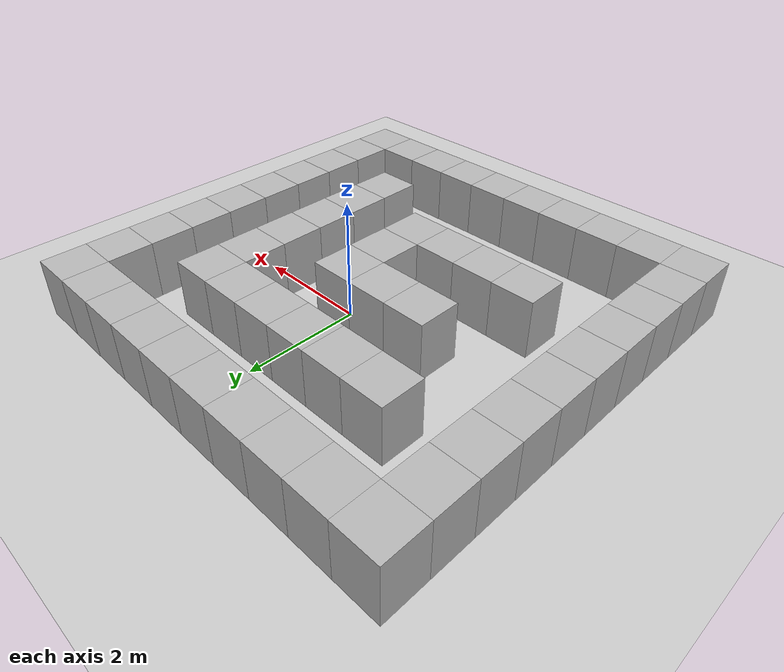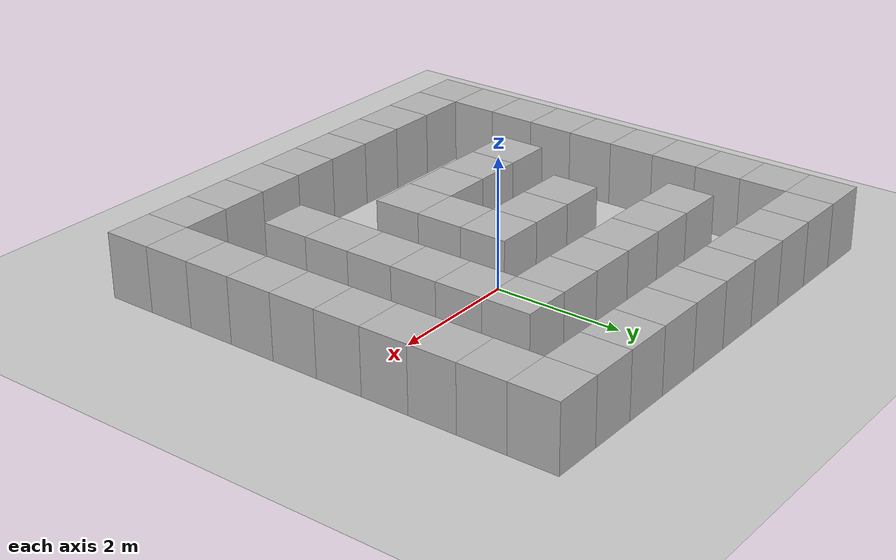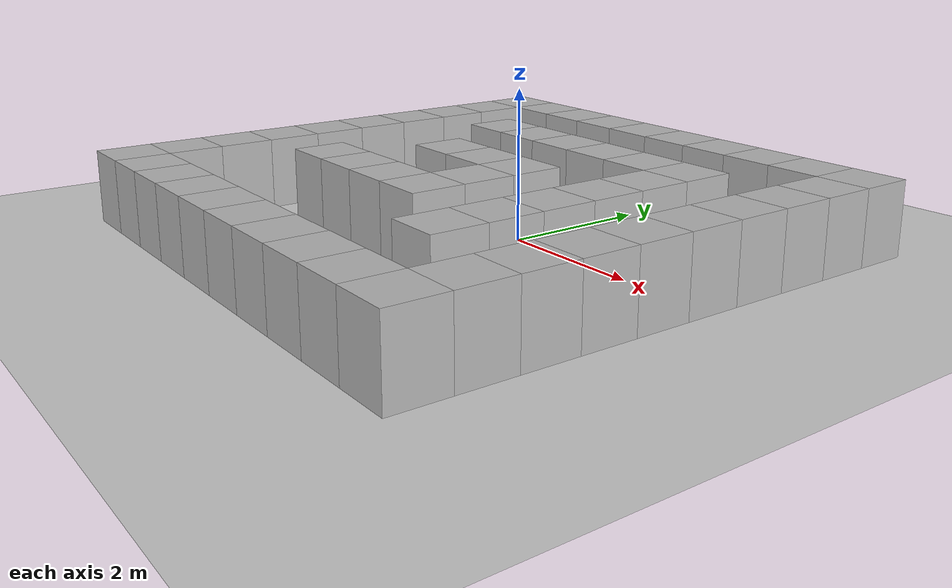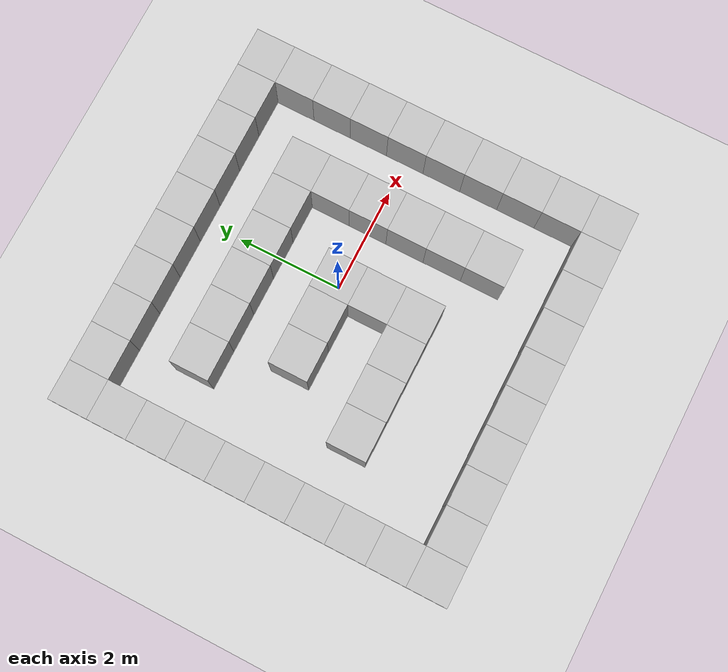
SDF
<?xml version="1.0" ?>
    <sdf version="1.5">
      <world name="default">
        <include>
          <uri>model://ground_plane</uri>
        </include>
        <include>
          <uri>model://sun</uri>
        </include>

                <model name="outer_wall_0_0">
                  <static>true</static>
                  <link name="link">
                    <collision name="collision">
                      <geometry>
                        <box>
                          <size>0.75 0.75 1</size>
                        </box>
                      </geometry>
                    </collision>
                    <visual name="visual">
                      <geometry>
                        <box>
                          <size>0.75 0.75 1</size>
                        </box>
                      </geometry>
                    </visual>
                  </link>
                  <pose>-3.75 -3.75 0.5 0 0 0</pose>
                </model>

                <model name="outer_wall_1_0">
                  <static>true</static>
                  <link name="link">
                    <collision name="collision">
                      <geometry>
                        <box>
                          <size>0.75 0.75 1</size>
                        </box>
                      </geometry>
                    </collision>
                    <visual name="visual">
                      <geometry>
                        <box>
                          <size>0.75 0.75 1</size>
                        </box>
                      </geometry>
                    </visual>
                  </link>
                  <pose>-3.0 -3.75 0.5 0 0 0</pose>
                </model>

                <model name="outer_wall_2_0">
                  <static>true</static>
                  <link name="link">
                    <collision name="collision">
                      <geometry>
                        <box>
                          <size>0.75 0.75 1</size>
                        </box>
                      </geometry>
                    </collision>
                    <visual name="visual">
                      <geometry>
                        <box>
                          <size>0.75 0.75 1</size>
                        </box>
                      </geometry>
                    </visual>
                  </link>
                  <pose>-2.25 -3.75 0.5 0 0 0</pose>
                </model>

                <model name="outer_wall_3_0">
                  <static>true</static>
                  <link name="link">
                    <collision name="collision">
                      <geometry>
                        <box>
                          <size>0.75 0.75 1</size>
                        </box>
                      </geometry>
                    </collision>
                    <visual name="visual">
                      <geometry>
                        <box>
                          <size>0.75 0.75 1</size>
                        </box>
                      </geometry>
                    </visual>
                  </link>
                  <pose>-1.5 -3.75 0.5 0 0 0</pose>
                </model>

                <model name="outer_wall_4_0">
                  <static>true</static>
                  <link name="link">
                    <collision name="collision">
                      <geometry>
                        <box>
                          <size>0.75 0.75 1</size>
                        </box>
                      </geometry>
                    </collision>
                    <visual name="visual">
                      <geometry>
                        <box>
                          <size>0.75 0.75 1</size>
                        </box>
                      </geometry>
                    </visual>
                  </link>
                  <pose>-0.75 -3.75 0.5 0 0 0</pose>
                </model>

                <model name="outer_wall_5_0">
                  <static>true</static>
                  <link name="link">
                    <collision name="collision">
                      <geometry>
                        <box>
                          <size>0.75 0.75 1</size>
                        </box>
                      </geometry>
                    </collision>
                    <visual name="visual">
                      <geometry>
                        <box>
                          <size>0.75 0.75 1</size>
                        </box>
                      </geometry>
                    </visual>
                  </link>
                  <pose>0.0 -3.75 0.5 0 0 0</pose>
                </model>

                <model name="outer_wall_6_0">
                  <static>true</static>
                  <link name="link">
                    <collision name="collision">
                      <geometry>
                        <box>
                          <size>0.75 0.75 1</size>
                        </box>
                      </geometry>
                    </collision>
                    <visual name="visual">
                      <geometry>
                        <box>
                          <size>0.75 0.75 1</size>
                        </box>
                      </geometry>
                    </visual>
                  </link>
                  <pose>0.75 -3.75 0.5 0 0 0</pose>
                </model>

                <model name="outer_wall_7_0">
                  <static>true</static>
                  <link name="link">
                    <collision name="collision">
                      <geometry>
                        <box>
                          <size>0.75 0.75 1</size>
                        </box>
                      </geometry>
                    </collision>
                    <visual name="visual">
                      <geometry>
                        <box>
                          <size>0.75 0.75 1</size>
                        </box>
                      </geometry>
                    </visual>
                  </link>
                  <pose>1.5 -3.75 0.5 0 0 0</pose>
                </model>

                <model name="outer_wall_8_0">
                  <static>true</static>
                  <link name="link">
                    <collision name="collision">
                      <geometry>
                        <box>
                          <size>0.75 0.75 1</size>
                        </box>
                      </geometry>
                    </collision>
                    <visual name="visual">
                      <geometry>
                        <box>
                          <size>0.75 0.75 1</size>
                        </box>
                      </geometry>
                    </visual>
                  </link>
                  <pose>2.25 -3.75 0.5 0 0 0</pose>
                </model>

                <model name="outer_wall_9_0">
                  <static>true</static>
                  <link name="link">
                    <collision name="collision">
                      <geometry>
                        <box>
                          <size>0.75 0.75 1</size>
                        </box>
                      </geometry>
                    </collision>
                    <visual name="visual">
                      <geometry>
                        <box>
                          <size>0.75 0.75 1</size>
                        </box>
                      </geometry>
                    </visual>
                  </link>
                  <pose>3.0 -3.75 0.5 0 0 0</pose>
                </model>

                <model name="outer_wall_0_1">
                  <static>true</static>
                  <link name="link">
                    <collision name="collision">
                      <geometry>
                        <box>
                          <size>0.75 0.75 1</size>
                        </box>
                      </geometry>
                    </collision>
                    <visual name="visual">
                      <geometry>
                        <box>
                          <size>0.75 0.75 1</size>
                        </box>
                      </geometry>
                    </visual>
                  </link>
                  <pose>-3.75 -3.0 0.5 0 0 0</pose>
                </model>

                <model name="outer_wall_9_1">
                  <static>true</static>
                  <link name="link">
                    <collision name="collision">
                      <geometry>
                        <box>
                          <size>0.75 0.75 1</size>
                        </box>
                      </geometry>
                    </collision>
                    <visual name="visual">
                      <geometry>
                        <box>
                          <size>0.75 0.75 1</size>
                        </box>
                      </geometry>
                    </visual>
                  </link>
                  <pose>3.0 -3.0 0.5 0 0 0</pose>
                </model>

                <model name="outer_wall_0_2">
                  <static>true</static>
                  <link name="link">
                    <collision name="collision">
                      <geometry>
                        <box>
                          <size>0.75 0.75 1</size>
                        </box>
                      </geometry>
                    </collision>
                    <visual name="visual">
                      <geometry>
                        <box>
                          <size>0.75 0.75 1</size>
                        </box>
                      </geometry>
                    </visual>
                  </link>
                  <pose>-3.75 -2.25 0.5 0 0 0</pose>
                </model>

                <model name="outer_wall_9_2">
                  <static>true</static>
                  <link name="link">
                    <collision name="collision">
                      <geometry>
                        <box>
                          <size>0.75 0.75 1</size>
                        </box>
                      </geometry>
                    </collision>
                    <visual name="visual">
                      <geometry>
                        <box>
                          <size>0.75 0.75 1</size>
                        </box>
                      </geometry>
                    </visual>
                  </link>
                  <pose>3.0 -2.25 0.5 0 0 0</pose>
                </model>

                <model name="outer_wall_0_3">
                  <static>true</static>
                  <link name="link">
                    <collision name="collision">
                      <geometry>
                        <box>
                          <size>0.75 0.75 1</size>
                        </box>
                      </geometry>
                    </collision>
                    <visual name="visual">
                      <geometry>
                        <box>
                          <size>0.75 0.75 1</size>
                        </box>
                      </geometry>
                    </visual>
                  </link>
                  <pose>-3.75 -1.5 0.5 0 0 0</pose>
                </model>

                <model name="outer_wall_9_3">
                  <static>true</static>
                  <link name="link">
                    <collision name="collision">
                      <geometry>
                        <box>
                          <size>0.75 0.75 1</size>
                        </box>
                      </geometry>
                    </collision>
                    <visual name="visual">
                      <geometry>
                        <box>
                          <size>0.75 0.75 1</size>
                        </box>
                      </geometry>
                    </visual>
                  </link>
                  <pose>3.0 -1.5 0.5 0 0 0</pose>
                </model>

                <model name="outer_wall_0_4">
                  <static>true</static>
                  <link name="link">
                    <collision name="collision">
                      <geometry>
                        <box>
                          <size>0.75 0.75 1</size>
                        </box>
                      </geometry>
                    </collision>
                    <visual name="visual">
                      <geometry>
                        <box>
                          <size>0.75 0.75 1</size>
                        </box>
                      </geometry>
                    </visual>
                  </link>
                  <pose>-3.75 -0.75 0.5 0 0 0</pose>
                </model>

                <model name="outer_wall_9_4">
                  <static>true</static>
                  <link name="link">
                    <collision name="collision">
                      <geometry>
                        <box>
                          <size>0.75 0.75 1</size>
                        </box>
                      </geometry>
                    </collision>
                    <visual name="visual">
                      <geometry>
                        <box>
                          <size>0.75 0.75 1</size>
                        </box>
                      </geometry>
                    </visual>
                  </link>
                  <pose>3.0 -0.75 0.5 0 0 0</pose>
                </model>

                <model name="outer_wall_0_5">
                  <static>true</static>
                  <link name="link">
                    <collision name="collision">
                      <geometry>
                        <box>
                          <size>0.75 0.75 1</size>
                        </box>
                      </geometry>
                    </collision>
                    <visual name="visual">
                      <geometry>
                        <box>
                          <size>0.75 0.75 1</size>
                        </box>
                      </geometry>
                    </visual>
                  </link>
                  <pose>-3.75 0.0 0.5 0 0 0</pose>
                </model>

                <model name="outer_wall_9_5">
                  <static>true</static>
                  <link name="link">
                    <collision name="collision">
                      <geometry>
                        <box>
                          <size>0.75 0.75 1</size>
                        </box>
                      </geometry>
                    </collision>
                    <visual name="visual">
                      <geometry>
                        <box>
                          <size>0.75 0.75 1</size>
                        </box>
                      </geometry>
                    </visual>
                  </link>
                  <pose>3.0 0.0 0.5 0 0 0</pose>
                </model>

                <model name="outer_wall_0_6">
                  <static>true</static>
                  <link name="link">
                    <collision name="collision">
                      <geometry>
                        <box>
                          <size>0.75 0.75 1</size>
                        </box>
                      </geometry>
                    </collision>
                    <visual name="visual">
                      <geometry>
                        <box>
                          <size>0.75 0.75 1</size>
                        </box>
                      </geometry>
                    </visual>
                  </link>
                  <pose>-3.75 0.75 0.5 0 0 0</pose>
                </model>

                <model name="outer_wall_9_6">
                  <static>true</static>
                  <link name="link">
                    <collision name="collision">
                      <geometry>
                        <box>
                          <size>0.75 0.75 1</size>
                        </box>
                      </geometry>
                    </collision>
                    <visual name="visual">
                      <geometry>
                        <box>
                          <size>0.75 0.75 1</size>
                        </box>
                      </geometry>
                    </visual>
                  </link>
                  <pose>3.0 0.75 0.5 0 0 0</pose>
                </model>

                <model name="outer_wall_0_7">
                  <static>true</static>
                  <link name="link">
                    <collision name="collision">
                      <geometry>
                        <box>
                          <size>0.75 0.75 1</size>
                        </box>
                      </geometry>
                    </collision>
                    <visual name="visual">
                      <geometry>
                        <box>
                          <size>0.75 0.75 1</size>
                        </box>
                      </geometry>
                    </visual>
                  </link>
                  <pose>-3.75 1.5 0.5 0 0 0</pose>
                </model>

                <model name="outer_wall_9_7">
                  <static>true</static>
                  <link name="link">
                    <collision name="collision">
                      <geometry>
                        <box>
                          <size>0.75 0.75 1</size>
                        </box>
                      </geometry>
                    </collision>
                    <visual name="visual">
                      <geometry>
                        <box>
                          <size>0.75 0.75 1</size>
                        </box>
                      </geometry>
                    </visual>
                  </link>
                  <pose>3.0 1.5 0.5 0 0 0</pose>
                </model>

                <model name="outer_wall_0_8">
                  <static>true</static>
                  <link name="link">
                    <collision name="collision">
                      <geometry>
                        <box>
                          <size>0.75 0.75 1</size>
                        </box>
                      </geometry>
                    </collision>
                    <visual name="visual">
                      <geometry>
                        <box>
                          <size>0.75 0.75 1</size>
                        </box>
                      </geometry>
                    </visual>
                  </link>
                  <pose>-3.75 2.25 0.5 0 0 0</pose>
                </model>

                <model name="outer_wall_9_8">
                  <static>true</static>
                  <link name="link">
                    <collision name="collision">
                      <geometry>
                        <box>
                          <size>0.75 0.75 1</size>
                        </box>
                      </geometry>
                    </collision>
                    <visual name="visual">
                      <geometry>
                        <box>
                          <size>0.75 0.75 1</size>
                        </box>
                      </geometry>
                    </visual>
                  </link>
                  <pose>3.0 2.25 0.5 0 0 0</pose>
                </model>

                <model name="outer_wall_0_9">
                  <static>true</static>
                  <link name="link">
                    <collision name="collision">
                      <geometry>
                        <box>
                          <size>0.75 0.75 1</size>
                        </box>
                      </geometry>
                    </collision>
                    <visual name="visual">
                      <geometry>
                        <box>
                          <size>0.75 0.75 1</size>
                        </box>
                      </geometry>
                    </visual>
                  </link>
                  <pose>-3.75 3.0 0.5 0 0 0</pose>
                </model>

                <model name="outer_wall_1_9">
                  <static>true</static>
                  <link name="link">
                    <collision name="collision">
                      <geometry>
                        <box>
                          <size>0.75 0.75 1</size>
                        </box>
                      </geometry>
                    </collision>
                    <visual name="visual">
                      <geometry>
                        <box>
                          <size>0.75 0.75 1</size>
                        </box>
                      </geometry>
                    </visual>
                  </link>
                  <pose>-3.0 3.0 0.5 0 0 0</pose>
                </model>

                <model name="outer_wall_2_9">
                  <static>true</static>
                  <link name="link">
                    <collision name="collision">
                      <geometry>
                        <box>
                          <size>0.75 0.75 1</size>
                        </box>
                      </geometry>
                    </collision>
                    <visual name="visual">
                      <geometry>
                        <box>
                          <size>0.75 0.75 1</size>
                        </box>
                      </geometry>
                    </visual>
                  </link>
                  <pose>-2.25 3.0 0.5 0 0 0</pose>
                </model>

                <model name="outer_wall_3_9">
                  <static>true</static>
                  <link name="link">
                    <collision name="collision">
                      <geometry>
                        <box>
                          <size>0.75 0.75 1</size>
                        </box>
                      </geometry>
                    </collision>
                    <visual name="visual">
                      <geometry>
                        <box>
                          <size>0.75 0.75 1</size>
                        </box>
                      </geometry>
                    </visual>
                  </link>
                  <pose>-1.5 3.0 0.5 0 0 0</pose>
                </model>

                <model name="outer_wall_4_9">
                  <static>true</static>
                  <link name="link">
                    <collision name="collision">
                      <geometry>
                        <box>
                          <size>0.75 0.75 1</size>
                        </box>
                      </geometry>
                    </collision>
                    <visual name="visual">
                      <geometry>
                        <box>
                          <size>0.75 0.75 1</size>
                        </box>
                      </geometry>
                    </visual>
                  </link>
                  <pose>-0.75 3.0 0.5 0 0 0</pose>
                </model>

                <model name="outer_wall_5_9">
                  <static>true</static>
                  <link name="link">
                    <collision name="collision">
                      <geometry>
                        <box>
                          <size>0.75 0.75 1</size>
                        </box>
                      </geometry>
                    </collision>
                    <visual name="visual">
                      <geometry>
                        <box>
                          <size>0.75 0.75 1</size>
                        </box>
                      </geometry>
                    </visual>
                  </link>
                  <pose>0.0 3.0 0.5 0 0 0</pose>
                </model>

                <model name="outer_wall_6_9">
                  <static>true</static>
                  <link name="link">
                    <collision name="collision">
                      <geometry>
                        <box>
                          <size>0.75 0.75 1</size>
                        </box>
                      </geometry>
                    </collision>
                    <visual name="visual">
                      <geometry>
                        <box>
                          <size>0.75 0.75 1</size>
                        </box>
                      </geometry>
                    </visual>
                  </link>
                  <pose>0.75 3.0 0.5 0 0 0</pose>
                </model>

                <model name="outer_wall_7_9">
                  <static>true</static>
                  <link name="link">
                    <collision name="collision">
                      <geometry>
                        <box>
                          <size>0.75 0.75 1</size>
                        </box>
                      </geometry>
                    </collision>
                    <visual name="visual">
                      <geometry>
                        <box>
                          <size>0.75 0.75 1</size>
                        </box>
                      </geometry>
                    </visual>
                  </link>
                  <pose>1.5 3.0 0.5 0 0 0</pose>
                </model>

                <model name="outer_wall_8_9">
                  <static>true</static>
                  <link name="link">
                    <collision name="collision">
                      <geometry>
                        <box>
                          <size>0.75 0.75 1</size>
                        </box>
                      </geometry>
                    </collision>
                    <visual name="visual">
                      <geometry>
                        <box>
                          <size>0.75 0.75 1</size>
                        </box>
                      </geometry>
                    </visual>
                  </link>
                  <pose>2.25 3.0 0.5 0 0 0</pose>
                </model>

                <model name="outer_wall_9_9">
                  <static>true</static>
                  <link name="link">
                    <collision name="collision">
                      <geometry>
                        <box>
                          <size>0.75 0.75 1</size>
                        </box>
                      </geometry>
                    </collision>
                    <visual name="visual">
                      <geometry>
                        <box>
                          <size>0.75 0.75 1</size>
                        </box>
                      </geometry>
                    </visual>
                  </link>
                  <pose>3.0 3.0 0.5 0 0 0</pose>
                </model>

                <model name="wall_5_0">
                  <static>true</static>
                  <link name="link">
                    <collision name="collision">
                      <geometry>
                        <box>
                          <size>0.75 0.75 1</size>
                        </box>
                      </geometry>
                    </collision>
                    <visual name="visual">
                      <geometry>
                        <box>
                          <size>0.75 0.75 1</size>
                        </box>
                      </geometry>
                    </visual>
                  </link>
                  <pose>1.5 -2.25 0.5 0 0 0</pose>
                </model>

                <model name="wall_0_1">
                  <static>true</static>
                  <link name="link">
                    <collision name="collision">
                      <geometry>
                        <box>
                          <size>0.75 0.75 1</size>
                        </box>
                      </geometry>
                    </collision>
                    <visual name="visual">
                      <geometry>
                        <box>
                          <size>0.75 0.75 1</size>
                        </box>
                      </geometry>
                    </visual>
                  </link>
                  <pose>-2.25 -1.5 0.5 0 0 0</pose>
                </model>

                <model name="wall_1_1">
                  <static>true</static>
                  <link name="link">
                    <collision name="collision">
                      <geometry>
                        <box>
                          <size>0.75 0.75 1</size>
                        </box>
                      </geometry>
                    </collision>
                    <visual name="visual">
                      <geometry>
                        <box>
                          <size>0.75 0.75 1</size>
                        </box>
                      </geometry>
                    </visual>
                  </link>
                  <pose>-1.5 -1.5 0.5 0 0 0</pose>
                </model>

                <model name="wall_2_1">
                  <static>true</static>
                  <link name="link">
                    <collision name="collision">
                      <geometry>
                        <box>
                          <size>0.75 0.75 1</size>
                        </box>
                      </geometry>
                    </collision>
                    <visual name="visual">
                      <geometry>
                        <box>
                          <size>0.75 0.75 1</size>
                        </box>
                      </geometry>
                    </visual>
                  </link>
                  <pose>-0.75 -1.5 0.5 0 0 0</pose>
                </model>

                <model name="wall_3_1">
                  <static>true</static>
                  <link name="link">
                    <collision name="collision">
                      <geometry>
                        <box>
                          <size>0.75 0.75 1</size>
                        </box>
                      </geometry>
                    </collision>
                    <visual name="visual">
                      <geometry>
                        <box>
                          <size>0.75 0.75 1</size>
                        </box>
                      </geometry>
                    </visual>
                  </link>
                  <pose>0.0 -1.5 0.5 0 0 0</pose>
                </model>

                <model name="wall_5_1">
                  <static>true</static>
                  <link name="link">
                    <collision name="collision">
                      <geometry>
                        <box>
                          <size>0.75 0.75 1</size>
                        </box>
                      </geometry>
                    </collision>
                    <visual name="visual">
                      <geometry>
                        <box>
                          <size>0.75 0.75 1</size>
                        </box>
                      </geometry>
                    </visual>
                  </link>
                  <pose>1.5 -1.5 0.5 0 0 0</pose>
                </model>

                <model name="wall_3_2">
                  <static>true</static>
                  <link name="link">
                    <collision name="collision">
                      <geometry>
                        <box>
                          <size>0.75 0.75 1</size>
                        </box>
                      </geometry>
                    </collision>
                    <visual name="visual">
                      <geometry>
                        <box>
                          <size>0.75 0.75 1</size>
                        </box>
                      </geometry>
                    </visual>
                  </link>
                  <pose>0.0 -0.75 0.5 0 0 0</pose>
                </model>

                <model name="wall_5_2">
                  <static>true</static>
                  <link name="link">
                    <collision name="collision">
                      <geometry>
                        <box>
                          <size>0.75 0.75 1</size>
                        </box>
                      </geometry>
                    </collision>
                    <visual name="visual">
                      <geometry>
                        <box>
                          <size>0.75 0.75 1</size>
                        </box>
                      </geometry>
                    </visual>
                  </link>
                  <pose>1.5 -0.75 0.5 0 0 0</pose>
                </model>

                <model name="wall_1_3">
                  <static>true</static>
                  <link name="link">
                    <collision name="collision">
                      <geometry>
                        <box>
                          <size>0.75 0.75 1</size>
                        </box>
                      </geometry>
                    </collision>
                    <visual name="visual">
                      <geometry>
                        <box>
                          <size>0.75 0.75 1</size>
                        </box>
                      </geometry>
                    </visual>
                  </link>
                  <pose>-1.5 0.0 0.5 0 0 0</pose>
                </model>

                <model name="wall_2_3">
                  <static>true</static>
                  <link name="link">
                    <collision name="collision">
                      <geometry>
                        <box>
                          <size>0.75 0.75 1</size>
                        </box>
                      </geometry>
                    </collision>
                    <visual name="visual">
                      <geometry>
                        <box>
                          <size>0.75 0.75 1</size>
                        </box>
                      </geometry>
                    </visual>
                  </link>
                  <pose>-0.75 0.0 0.5 0 0 0</pose>
                </model>

                <model name="wall_3_3">
                  <static>true</static>
                  <link name="link">
                    <collision name="collision">
                      <geometry>
                        <box>
                          <size>0.75 0.75 1</size>
                        </box>
                      </geometry>
                    </collision>
                    <visual name="visual">
                      <geometry>
                        <box>
                          <size>0.75 0.75 1</size>
                        </box>
                      </geometry>
                    </visual>
                  </link>
                  <pose>0.0 0.0 0.5 0 0 0</pose>
                </model>

                <model name="wall_5_3">
                  <static>true</static>
                  <link name="link">
                    <collision name="collision">
                      <geometry>
                        <box>
                          <size>0.75 0.75 1</size>
                        </box>
                      </geometry>
                    </collision>
                    <visual name="visual">
                      <geometry>
                        <box>
                          <size>0.75 0.75 1</size>
                        </box>
                      </geometry>
                    </visual>
                  </link>
                  <pose>1.5 0.0 0.5 0 0 0</pose>
                </model>

                <model name="wall_5_4">
                  <static>true</static>
                  <link name="link">
                    <collision name="collision">
                      <geometry>
                        <box>
                          <size>0.75 0.75 1</size>
                        </box>
                      </geometry>
                    </collision>
                    <visual name="visual">
                      <geometry>
                        <box>
                          <size>0.75 0.75 1</size>
                        </box>
                      </geometry>
                    </visual>
                  </link>
                  <pose>1.5 0.75 0.5 0 0 0</pose>
                </model>

                <model name="wall_0_5">
                  <static>true</static>
                  <link name="link">
                    <collision name="collision">
                      <geometry>
                        <box>
                          <size>0.75 0.75 1</size>
                        </box>
                      </geometry>
                    </collision>
                    <visual name="visual">
                      <geometry>
                        <box>
                          <size>0.75 0.75 1</size>
                        </box>
                      </geometry>
                    </visual>
                  </link>
                  <pose>-2.25 1.5 0.5 0 0 0</pose>
                </model>

                <model name="wall_1_5">
                  <static>true</static>
                  <link name="link">
                    <collision name="collision">
                      <geometry>
                        <box>
                          <size>0.75 0.75 1</size>
                        </box>
                      </geometry>
                    </collision>
                    <visual name="visual">
                      <geometry>
                        <box>
                          <size>0.75 0.75 1</size>
                        </box>
                      </geometry>
                    </visual>
                  </link>
                  <pose>-1.5 1.5 0.5 0 0 0</pose>
                </model>

                <model name="wall_2_5">
                  <static>true</static>
                  <link name="link">
                    <collision name="collision">
                      <geometry>
                        <box>
                          <size>0.75 0.75 1</size>
                        </box>
                      </geometry>
                    </collision>
                    <visual name="visual">
                      <geometry>
                        <box>
                          <size>0.75 0.75 1</size>
                        </box>
                      </geometry>
                    </visual>
                  </link>
                  <pose>-0.75 1.5 0.5 0 0 0</pose>
                </model>

                <model name="wall_3_5">
                  <static>true</static>
                  <link name="link">
                    <collision name="collision">
                      <geometry>
                        <box>
                          <size>0.75 0.75 1</size>
                        </box>
                      </geometry>
                    </collision>
                    <visual name="visual">
                      <geometry>
                        <box>
                          <size>0.75 0.75 1</size>
                        </box>
                      </geometry>
                    </visual>
                  </link>
                  <pose>0.0 1.5 0.5 0 0 0</pose>
                </model>

                <model name="wall_4_5">
                  <static>true</static>
                  <link name="link">
                    <collision name="collision">
                      <geometry>
                        <box>
                          <size>0.75 0.75 1</size>
                        </box>
                      </geometry>
                    </collision>
                    <visual name="visual">
                      <geometry>
                        <box>
                          <size>0.75 0.75 1</size>
                        </box>
                      </geometry>
                    </visual>
                  </link>
                  <pose>0.75 1.5 0.5 0 0 0</pose>
                </model>

                <model name="wall_5_5">
                  <static>true</static>
                  <link name="link">
                    <collision name="collision">
                      <geometry>
                        <box>
                          <size>0.75 0.75 1</size>
                        </box>
                      </geometry>
                    </collision>
                    <visual name="visual">
                      <geometry>
                        <box>
                          <size>0.75 0.75 1</size>
                        </box>
                      </geometry>
                    </visual>
                  </link>
                  <pose>1.5 1.5 0.5 0 0 0</pose>
                </model>

      </world>
    </sdf>
